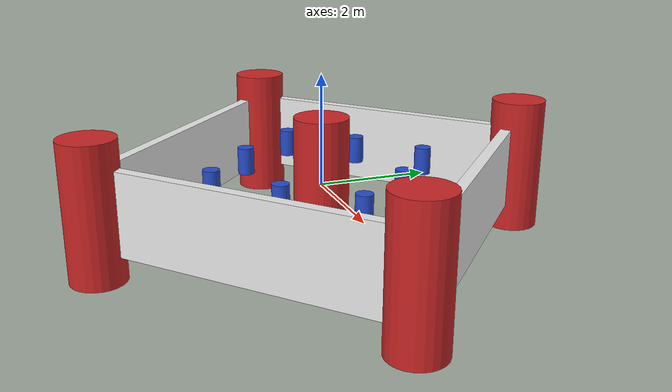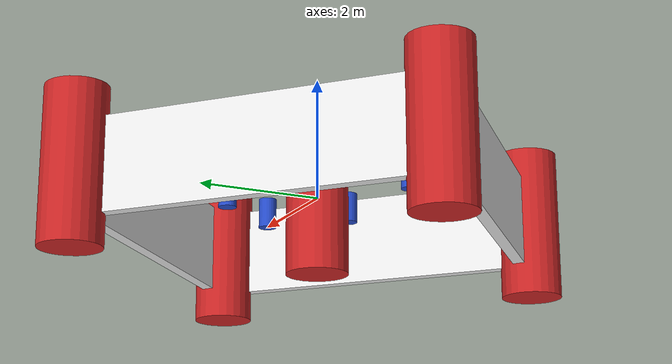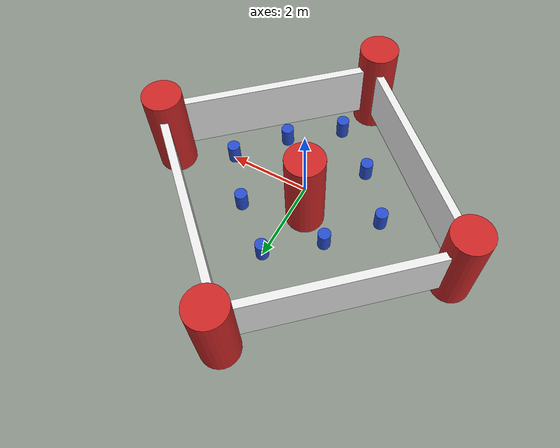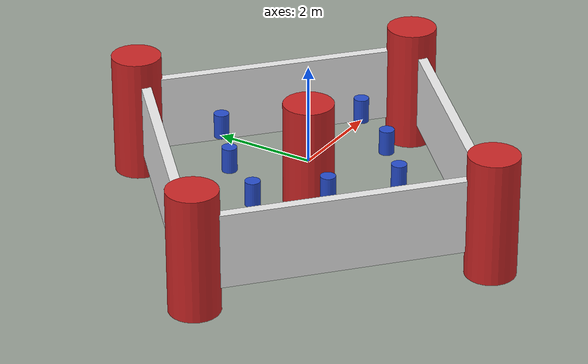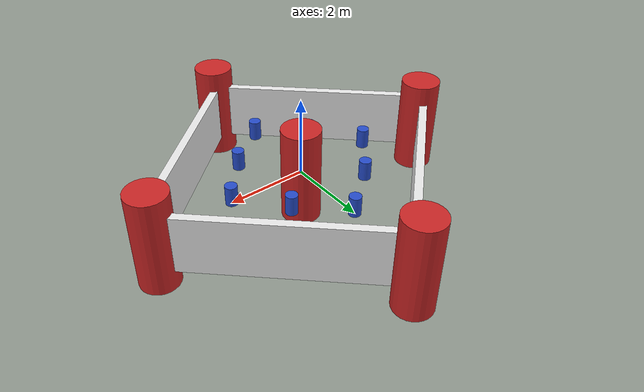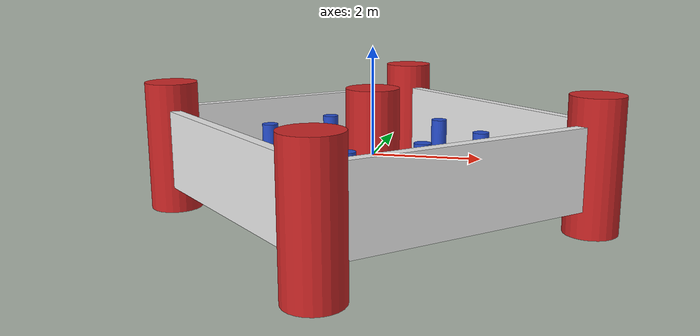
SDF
<sdf version='1.5'>
    <!-- Draw Obstacles -->
    <model name='my_world'>
      <static>1</static>
      <link name='symbol'>
        <collision name='one_one'>
          <pose>-1.1 -1.1 0.25 0 0 0</pose>
          <geometry>
            <cylinder>
              <radius>0.15</radius>
              <length>0.5</length>
            </cylinder>
          </geometry>
          <max_contacts>10</max_contacts>
          <surface>
            <bounce/>
            <friction>
              <ode/>
            </friction>
            <contact>
              <ode/>
            </contact>
          </surface>
        </collision>

        <visual name='one_one'>
          <pose>-1.1 -1.1 0.25 0 0 0</pose>
          <geometry>
            <cylinder>
              <radius>0.15</radius>
              <length>0.5</length>
            </cylinder>
          </geometry>
          <material>
            <script>
              <uri>file://media/materials/scripts/gazebo.material</uri>
              <name>Gazebo/Blue</name>
            </script>
          </material>
        </visual>

        <collision name='back'>
          <pose>-2 0 0.25 0 0 0</pose>
          <geometry>
            <cylinder>
              <radius>0.15</radius>
              <length>0.5</length>
            </cylinder>
          </geometry>
          <max_contacts>10</max_contacts>
          <surface>
            <bounce/>
            <friction>
              <ode/>
            </friction>
            <contact>
              <ode/>
            </contact>
          </surface>
        </collision>

        <visual name='back'>
          <pose>-2 0 0.25 0 0 0</pose>
          <geometry>
            <cylinder>
              <radius>0.15</radius>
              <length>0.5</length>
            </cylinder>
          </geometry>
          <material>
            <script>
              <uri>file://media/materials/scripts/gazebo.material</uri>
              <name>Gazebo/Blue</name>
            </script>
          </material>
        </visual>

        <collision name='one_three'>
          <pose>-1.1 1.1 0.25 0 0 0</pose>
          <geometry>
            <cylinder>
              <radius>0.15</radius>
              <length>0.5</length>
            </cylinder>
          </geometry>
          <max_contacts>10</max_contacts>
          <surface>
            <bounce/>
            <friction>
              <ode/>
            </friction>
            <contact>
              <ode/>
            </contact>
          </surface>
        </collision>

        <visual name='one_three'>
          <pose>-1.1 1.1 0.25 0 0 0</pose>
          <geometry>
            <cylinder>
              <radius>0.15</radius>
              <length>0.5</length>
            </cylinder>
          </geometry>
          <material>
            <script>
              <uri>file://media/materials/scripts/gazebo.material</uri>
              <name>Gazebo/Blue</name>
            </script>
          </material>
        </visual>

        <collision name='right'>
          <pose>0 -2 0.25 0 0 0</pose>
          <geometry>
            <cylinder>
              <radius>0.15</radius>
              <length>0.5</length>
            </cylinder>
          </geometry>
          <max_contacts>10</max_contacts>
          <surface>
            <bounce/>
            <friction>
              <ode/>
            </friction>
            <contact>
              <ode/>
            </contact>
          </surface>
        </collision>

        <visual name='right'>
          <pose>0 -2 0.25 0 0 0</pose>
          <geometry>
            <cylinder>
              <radius>0.15</radius>
              <length>0.5</length>
            </cylinder>
          </geometry>
          <material>
            <script>
              <uri>file://media/materials/scripts/gazebo.material</uri>
              <name>Gazebo/Blue</name>
            </script>
          </material>
        </visual>

        <collision name='left'>
          <pose>0 2 0.25 0 0 0</pose>
          <geometry>
            <cylinder>
              <radius>0.15</radius>
              <length>0.5</length>
            </cylinder>
          </geometry>
          <max_contacts>10</max_contacts>
          <surface>
            <bounce/>
            <friction>
              <ode/>
            </friction>
            <contact>
              <ode/>
            </contact>
          </surface>
        </collision>

        <visual name='left'>
          <pose>0 2 0.25 0 0 0</pose>
          <geometry>
            <cylinder>
              <radius>0.15</radius>
              <length>0.5</length>
            </cylinder>
          </geometry>
          <material>
            <script>
              <uri>file://media/materials/scripts/gazebo.material</uri>
              <name>Gazebo/Blue</name>
            </script>
          </material>
        </visual>

        <collision name='three_one'>
          <pose>1.1 -1.1 0.25 0 0 0</pose>
          <geometry>
            <cylinder>
              <radius>0.15</radius>
              <length>0.5</length>
            </cylinder>
          </geometry>
          <max_contacts>10</max_contacts>
          <surface>
            <bounce/>
            <friction>
              <ode/>
            </friction>
            <contact>
              <ode/>
            </contact>
          </surface>
        </collision>

        <visual name='three_one'>
          <pose>1.1 -1.1 0.25 0 0 0</pose>
          <geometry>
            <cylinder>
              <radius>0.15</radius>
              <length>0.5</length>
            </cylinder>
          </geometry>
          <material>
            <script>
              <uri>file://media/materials/scripts/gazebo.material</uri>
              <name>Gazebo/Blue</name>
            </script>
          </material>
        </visual>

        <collision name='front'>
          <pose>2 0 0.25 0 0 0</pose>
          <geometry>
            <cylinder>
              <radius>0.15</radius>
              <length>0.5</length>
            </cylinder>
          </geometry>
          <max_contacts>10</max_contacts>
          <surface>
            <bounce/>
            <friction>
              <ode/>
            </friction>
            <contact>
              <ode/>
            </contact>
          </surface>
        </collision>

        <visual name='front'>
          <pose>2 0 0.25 0 0 0</pose>
          <geometry>
            <cylinder>
              <radius>0.15</radius>
              <length>0.5</length>
            </cylinder>
          </geometry>
          <material>
            <script>
              <uri>file://media/materials/scripts/gazebo.material</uri>
              <name>Gazebo/Blue</name>
            </script>
          </material>
        </visual>

        <collision name='three_three'>
          <pose>1.1 1.1 0.25 0 0 0</pose>
          <geometry>
            <cylinder>
              <radius>0.15</radius>
              <length>0.5</length>
            </cylinder>
          </geometry>
          <max_contacts>10</max_contacts>
          <surface>
            <bounce/>
            <friction>
              <ode/>
            </friction>
            <contact>
              <ode/>
            </contact>
          </surface>
        </collision>

        <visual name='three_three'>
          <pose>1.1 1.1 0.25 0 0 0</pose>
          <geometry>
            <cylinder>
              <radius>0.15</radius>
              <length>0.5</length>
            </cylinder>
          </geometry>
          <material>
            <script>
              <uri>file://media/materials/scripts/gazebo.material</uri>
              <name>Gazebo/Blue</name>
            </script>
          </material>
        </visual>

        <!-- Draw Diamond -->
	<collision name='center_cylinder'>
          <pose>0 0 0 0 0 0</pose>
          <geometry>
            <cylinder>
              <radius>0.5</radius>
              <length>2.5</length>
            </cylinder>
          </geometry>
          <max_contacts>10</max_contacts>
          <surface>
            <bounce/>
            <friction>
              <ode/>
            </friction>
            <contact>
              <ode/>
            </contact>
          </surface>
        </collision>

        <visual name='center_cylinder'>
          <pose>0 0 0 0 0 0</pose>
          <geometry>
            <cylinder>
              <radius>0.5</radius>
              <length>2.5</length>
            </cylinder>
          </geometry>
          <material>
            <script>
              <uri>file://media/materials/scripts/gazebo.material</uri>
              <name>Gazebo/Red</name>
            </script>
          </material>
        </visual>

	<collision name='up_cylinder'>
          <pose>4 0 0 0 0 0</pose>
          <geometry>
            <cylinder>
              <radius>0.5</radius>
              <length>2.5</length>
            </cylinder>
          </geometry>
          <max_contacts>10</max_contacts>
          <surface>
            <bounce/>
            <friction>
              <ode/>
            </friction>
            <contact>
              <ode/>
            </contact>
          </surface>
        </collision>

        <visual name='up_cylinder'>
          <pose>4 0 0 0 0 0</pose>
          <geometry>
            <cylinder>
              <radius>0.5</radius>
              <length>2.5</length>
            </cylinder>
          </geometry>
          <material>
            <script>
              <uri>file://media/materials/scripts/gazebo.material</uri>
              <name>Gazebo/Red</name>
            </script>
          </material>
        </visual>

        <collision name='left_cylinder'>
          <pose>0 4 0 0 0 0</pose>
          <geometry>
            <cylinder>
              <radius>0.5</radius>
              <length>2.5</length>
            </cylinder>
          </geometry>
          <max_contacts>10</max_contacts>
          <surface>
            <bounce/>
            <friction>
              <ode/>
            </friction>
            <contact>
              <ode/>
            </contact>
          </surface>
        </collision>

        <visual name='left_cylinder'>
          <pose>0 4 0 0 0 0</pose>
          <geometry>
            <cylinder>
              <radius>0.5</radius>
              <length>2.5</length>
            </cylinder>
          </geometry>
          <material>
            <script>
              <uri>file://media/materials/scripts/gazebo.material</uri>
              <name>Gazebo/Red</name>
            </script>
          </material>
        </visual>

        <collision name='right_cylinder'>
          <pose>0 -4 0 0 0 0</pose>
          <geometry>
            <cylinder>
              <radius>0.5</radius>
              <length>2.5</length>
            </cylinder>
          </geometry>
          <max_contacts>10</max_contacts>
          <surface>
            <bounce/>
            <friction>
              <ode/>
            </friction>
            <contact>
              <ode/>
            </contact>
          </surface>
        </collision>

        <visual name='right_cylinder'>
          <pose>0 -4 0 0 0 0</pose>
          <geometry>
            <cylinder>
              <radius>0.5</radius>
              <length>2.5</length>
            </cylinder>
          </geometry>
          <material>
            <script>
              <uri>file://media/materials/scripts/gazebo.material</uri>
              <name>Gazebo/Red</name>
            </script>
          </material>
        </visual>

        <collision name='down_cylinder'>
          <pose>-4 0 0 0 0 0</pose>
          <geometry>
            <cylinder>
              <radius>0.5</radius>
              <length>2.5</length>
            </cylinder>
          </geometry>
          <max_contacts>10</max_contacts>
          <surface>
            <bounce/>
            <friction>
              <ode/>
            </friction>
            <contact>
              <ode/>
            </contact>
          </surface>
        </collision>

        <visual name='down_cylinder'>
          <pose>-4 0 0 0 0 0</pose>
          <geometry>
            <cylinder>
              <radius>0.5</radius>
              <length>2.5</length>
            </cylinder>
          </geometry>
          <material>
            <script>
              <uri>file://media/materials/scripts/gazebo.material</uri>
              <name>Gazebo/Red</name>
            </script>
          </material>
        </visual>

        <!-- Draw Wall -->
        <collision name='front_left_wall'>
        <pose>2 2 0 0 0 2.4</pose>
        <geometry>
          <box>
              <size>5 0.2 1.5</size>
            </box>
        </geometry>
        <max_contacts>10</max_contacts>
        <surface>
          <bounce/>
          <friction>
            <ode/>
          </friction>
          <contact>
            <ode/>
          </contact>
        </surface>
      </collision>

      <visual name='front_left_wall'>
        <pose>2 2 0 0 0 2.4</pose>
        <geometry>
          <box>
              <size>5 0.2 1.5</size>
            </box>
        </geometry>
        <material>
          <script>
            <uri>file://media/materials/scripts/gazebo.material</uri>
            <name>Gazebo/FlatWhite</name>
          </script>
        </material>
      </visual>

      <collision name='front_right_wall'>
        <pose>2 -2 0 0 0 -2.4</pose>
        <geometry>
          <box>
              <size>5 0.2 1.5</size>
            </box>
        </geometry>
        <max_contacts>10</max_contacts>
        <surface>
          <bounce/>
          <friction>
            <ode/>
          </friction>
          <contact>
            <ode/>
          </contact>
        </surface>
      </collision>

      <visual name='front_right_wall'>
        <pose>2 -2 0 0 0 -2.4</pose>
        <geometry>
          <box>
              <size>5 0.2 1.5</size>
            </box>
        </geometry>
        <material>
          <script>
            <uri>file://media/materials/scripts/gazebo.material</uri>
            <name>Gazebo/FlatWhite</name>
          </script>
        </material>
      </visual>

      <collision name='back_left_wall'>
        <pose>-2 2 0 0 0 -2.4</pose>
        <geometry>
          <box>
              <size>5 0.2 1.5</size>
            </box>
        </geometry>
        <max_contacts>10</max_contacts>
        <surface>
          <bounce/>
          <friction>
            <ode/>
          </friction>
          <contact>
            <ode/>
          </contact>
        </surface>
      </collision>

      <visual name='back_left_wall'>
        <pose>-2 2 0 0 0 -2.4</pose>
        <geometry>
          <box>
              <size>5 0.2 1.5</size>
            </box>
        </geometry>
        <material>
          <script>
            <uri>file://media/materials/scripts/gazebo.material</uri>
            <name>Gazebo/FlatWhite</name>
          </script>
        </material>
      </visual>

      <collision name='back_right_wall'>
        <pose>-2 -2 0 0 0 2.4</pose>
        <geometry>
          <box>
              <size>5 0.2 1.5</size>
            </box>
        </geometry>
        <max_contacts>10</max_contacts>
        <surface>
          <bounce/>
          <friction>
            <ode/>
          </friction>
          <contact>
            <ode/>
          </contact>
        </surface>
      </collision>

      <visual name='back_right_wall'>
        <pose>-2 -2 0 0 0 2.4</pose>
        <geometry>
          <box>
              <size>5 0.2 1.5</size>
            </box>
        </geometry>
        <material>
          <script>
            <uri>file://media/materials/scripts/gazebo.material</uri>
            <name>Gazebo/FlatWhite</name>
          </script>
        </material>
      </visual>

    </link>
  </model>
</sdf>
